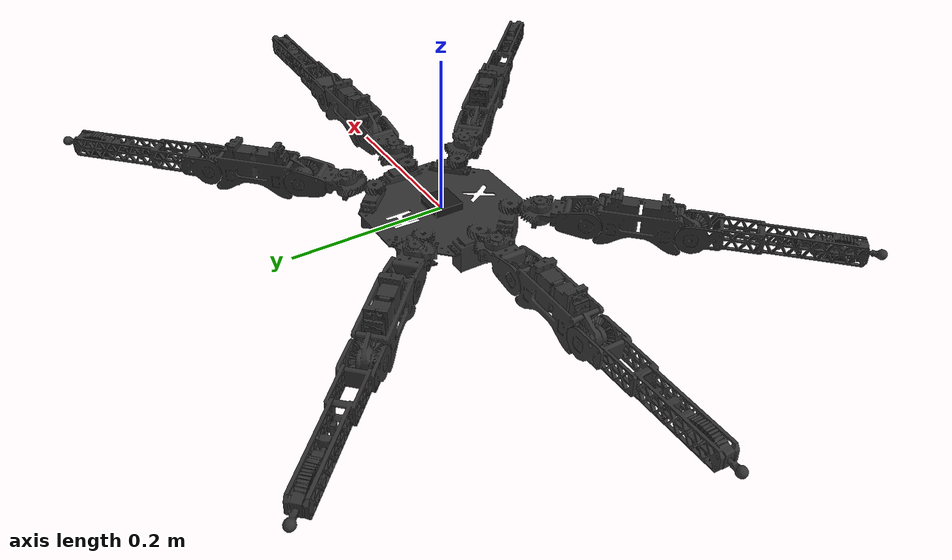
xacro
<?xml version="1.0"?>
<robot name="hexapod" xmlns:xacro="http://ros.org/wiki/xacro">
    <xacro:arg name="prefix" default="" />
    <xacro:arg name="use_gazebo" default="false" />
    <xacro:arg name="use_fake_hardware" default="false" />
    <xacro:arg name="fake_sensor_commands" default="false" />
    <xacro:arg name="port_name" default="/dev/ttyUSB0" />
    <xacro:arg name="baud_rate" default="115200" />
    <xacro:arg name="version" default="2" />

    <xacro:include filename="$(find hexapod_description)/urdf/hexapod_ee.urdf.xacro" />
    <xacro:hexapod_ee
        use_sim="true"
        prefix="$(arg prefix)"
        use_gazebo="$(arg use_gazebo)"
        use_fake_hardware="$(arg use_fake_hardware)"
        fake_sensor_commands="$(arg fake_sensor_commands)"
        port_name="$(arg port_name)"
        baud_rate="$(arg baud_rate)"
        version="$(arg version)" />
</robot>

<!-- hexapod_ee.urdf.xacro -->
<robot name="hexapod" xmlns:xacro="http://ros.org/wiki/xacro">
  <xacro:macro name="hexapod_ee" params="use_sim prefix use_gazebo use_fake_hardware fake_sensor_commands port_name baud_rate version">

    <xacro:include filename="$(find hexapod_description)/gazebo/hexapod.gazebo.xacro" />
    <xacro:include filename="$(find hexapod_description)/urdf/hexapod_leg_ee.urdf.xacro" />
    <xacro:include filename="$(find hexapod_description)/urdf/hexapod_gazebo.urdf.xacro" />
    <xacro:include filename="$(find hexapod_description)/urdf/imu.urdf.xacro"/>
    <xacro:include filename="$(find hexapod_moveit_config)/config/hexapod.ros2_control.xacro" />

    <xacro:hexapod_leg_ee prefix="${prefix}" version="${version}"/>
    <xacro:hexapod_gazebo prefix="${prefix}" />

    <xacro:imu_sensor
    prefix="${prefix}"
    parent="${prefix}base_link"
    frame_id="imu"
    xyz_offset="0 0 0.006"
    rpy_offset="0 0 0"
    update_rate="15.0"
    topic_name="imu/data"/>

    <gazebo>
      <plugin filename="gz_ros2_control-system" name="gz_ros2_control::GazeboSimROS2ControlPlugin">
        <parameters>$(find hex_gz)/config/gazebo_controller_manager.yaml</parameters>
      </plugin>
    </gazebo>

    <gazebo reference="imu">
      <sensor name="imu_sensor" type="imu">
        <update_rate>100.0</update_rate>
        <always_on>true</always_on>
        <visualize>true</visualize>
        <topic>imu/data</topic>
        <imu>
          <topic>imu/data</topic>
          <gaussian_noise>0.01</gaussian_noise>
          <bias_mean>0.0</bias_mean>
          <bias_stddev>0.0</bias_stddev>
        </imu>
      </sensor>
    </gazebo>

    <xacro:hexapod_ros2_control
        name="hexapod"
        initial_positions_file="$(find hexapod_description)/config/initial_positions.yaml"
        use_gazebo="${use_gazebo}"
        use_fake_hardware="${use_fake_hardware}"
        fake_sensor_commands="${fake_sensor_commands}"
        port_name="${port_name}"
        baud_rate="${baud_rate}" />
  </xacro:macro>
</robot>

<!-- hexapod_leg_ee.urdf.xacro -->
<robot xmlns:xacro="http://www.ros.org/wiki/xacro">
  <xacro:macro name="hexapod_leg_ee" params="prefix version">
    <xacro:if value="${int(version) == 1}">
      <!-- CECHY INERCJI -->
      <xacro:property name="platform_mass" value="0.3" />
      <xacro:property name="up_section_mass" value="0.1" />
      <xacro:property name="mid_section_mass" value="0.1" />
      <xacro:property name="down_section_mass" value="0.1" />
      <xacro:property name="ixx" value="0.001"/>
      <xacro:property name="iyy" value="0.001"/>
      <xacro:property name="izz" value="0.001"/>

      <!-- OGRANICZENIA KĄTOWE JOINTÓW -->
      <xacro:property name="joint1_lower" value="-0.5236"/>
      <xacro:property name="joint1_upper" value="0.5236"/>
      <xacro:property name="joint2_lower" value="-0.261799388"/>
      <xacro:property name="joint2_upper" value="1.308996939"/>
      <xacro:property name="joint3_lower" value="0"/>
      <xacro:property name="joint3_upper" value="1.570796327"/>

      <!-- CECHY POŁOŻENIA STAWÓW LEG 1 -->
      <xacro:property name="joint1_1_xyz" value="-0.063746 0.067285 0.003274"/>
      <xacro:property name="joint1_1_axis" value="0 0 1"/>

      <xacro:property name="joint2_1_xyz" value="-0.018864 0.024671 -0.020002"/>
      <xacro:property name="joint2_1_axis" value="-0.7968540982 -0.6041717854 0"/>

      <xacro:property name="joint3_1_xyz" value="-0.054636 0.071451 0.00505"/>
      <xacro:property name="joint3_1_axis" value="-0.7968540982 -0.6041717854 0"/>

      <xacro:property name="joint4_1_xyz" value="-0.099587 0.130461 -0.000046"/>
      <xacro:property name="joint4_1_axis" value="0 0 0"/>

      <!-- CECHY POŁOŻENIA LINKÓW LEG 1 -->
      <xacro:property name="link2_1_xyz" value="-0.013611 0.016988 -0.000419"/>
      <xacro:property name="link2_1_rpy" value="0 0 0.654498469"/>
      <xacro:property name="link3_1_xyz" value="-0.024936 0.032658 0.000547"/>
      <xacro:property name="link3_1_rpy" value="0 0 0.654498469"/>
      <xacro:property name="link4_1_xyz" value="-0.039176 0.05167 0"/>
      <xacro:property name="link4_1_rpy" value="0 0 0.654498469"/>

      <!-- CECHY POŁOŻENIA STAWÓW LEG 2 -->
      <xacro:property name="joint1_2_xyz" value="-0.005442 0.097816 0.003274"/>
      <xacro:property name="joint1_2_axis" value="0 0 1"/>

      <xacro:property name="joint2_2_xyz" value="0.0 0.031057 -0.020002"/>
      <xacro:property name="joint2_2_axis" value="-1 0 0"/>

      <xacro:property name="joint3_2_xyz" value="0.0 0.089946 0.00505"/>
      <xacro:property name="joint3_2_axis" value="-1 0 0"/>

      <xacro:property name="joint4_2_xyz" value="0.000147 0.164223 -0.000046"/>
      <xacro:property name="joint4_2_axis" value="0 0 0"/>

      <!-- CECHY POŁOŻENIA LINKÓW LEG 2 -->
      <xacro:property name="link2_2_xyz" value="-0.000493 0.021762 -0.000419"/>
      <xacro:property name="link2_2_rpy" value="0 0 0"/>
      <xacro:property name="link3_2_xyz" value="0.0 0.041 0.000546"/>
      <xacro:property name="link3_2_rpy" value="0 0 0"/>
      <xacro:property name="link4_2_xyz" value="0.000265 0.064842 0.0"/>
      <xacro:property name="link4_2_rpy" value="0 0 0"/>

      <!-- CECHY POŁOŻENIA STAWÓW LEG 3 -->
      <xacro:property name="joint1_3_xyz" value="0.055103 0.073938 0.003274"/>
      <xacro:property name="joint1_3_axis" value="0 0 1"/>

      <xacro:property name="joint2_3_xyz" value="0.018864 0.024671 -0.020002"/>
      <xacro:property name="joint2_3_axis" value="-0.794374 0.6074290528 0"/>

      <xacro:property name="joint3_3_xyz" value="0.054636 0.071451 0.00505"/>
      <xacro:property name="joint3_3_axis" value="-0.794374 0.6074290528 0"/>

      <xacro:property name="joint4_3_xyz" value="0.099252 0.130694 -0.000046"/>
      <xacro:property name="joint4_3_axis" value="0 0 0"/>

      <!-- CECHY POŁOŻENIA LINKÓW LEG 3 -->
      <xacro:property name="link2_3_xyz" value="0.012827 0.017587 -0.000419"/>
      <xacro:property name="link2_3_rpy" value="0 0 -0.654498469"/>
      <xacro:property name="link3_3_xyz" value="0.024936 0.032658 0.000547"/>
      <xacro:property name="link3_3_rpy" value="0 0 -0.654498469"/>
      <xacro:property name="link4_3_xyz" value="0.039176 0.05167 0"/>
      <xacro:property name="link4_3_rpy" value="0 0 -0.654498469"/>

      <!-- CECHY POŁOŻENIA STAWÓW LEG 4 -->
      <xacro:property name="joint1_4_xyz" value="0.055103 -0.073938 0.003274"/>
      <xacro:property name="joint1_4_axis" value="0 0 1"/>

      <xacro:property name="joint2_4_xyz" value="0.018864 -0.024671 -0.020002"/>
      <xacro:property name="joint2_4_axis" value="0.6074290528 0.794374 0"/>

      <xacro:property name="joint3_4_xyz" value="0.054636 -0.071451 0.00505"/>
      <xacro:property name="joint3_4_axis" value="0.794374 0.6074290528 0"/>

      <xacro:property name="joint4_4_xyz" value="0.099758 -0.130448 -0.000046"/>
      <xacro:property name="joint4_4_axis" value="0 0 0"/>

      <!-- CECHY POŁOŻENIA LINKÓW LEG 4 -->
      <xacro:property name="link2_4_xyz" value="0.013611 -0.016988 -0.000419"/>
      <xacro:property name="link2_4_rpy" value="0 0 3.796091123"/>
      <xacro:property name="link3_4_xyz" value="0.024936 -0.032658 0.000547"/>
      <xacro:property name="link3_4_rpy" value="0 0 3.796091123"/>
      <xacro:property name="link4_4_xyz" value="0.039176 -0.05167 0"/>
      <xacro:property name="link4_4_rpy" value="0 0 3.796091123"/>

      <!-- CECHY POŁOŻENIA STAWÓW LEG 5 -->
      <xacro:property name="joint1_5_xyz" value="-0.005442 -0.097816 0.003274"/>
      <xacro:property name="joint1_5_axis" value="0 0 1"/>

      <xacro:property name="joint2_5_xyz" value="0.0 -0.031057 -0.020002"/>
      <xacro:property name="joint2_5_axis" value="1 0 0"/>

      <xacro:property name="joint3_5_xyz" value="0.0 -0.089946 0.00505"/>
      <xacro:property name="joint3_5_axis" value="1 0 0"/>

      <xacro:property name="joint4_5_xyz" value="-0.000051 -0.164207 -0.000046"/>
      <xacro:property name="joint4_5_axis" value="0 0 0"/>

      <!-- CECHY POŁOŻENIA LINKÓW LEG 5 -->
      <xacro:property name="link2_5_xyz" value="0.000493 -0.021762 -0.000419"/>
      <xacro:property name="link2_5_rpy" value="0 0 3.141592654"/>
      <xacro:property name="link3_5_xyz" value="0.0 -0.041 0.000546"/>
      <xacro:property name="link3_5_rpy" value="0 0 3.141592654"/>
      <xacro:property name="link4_5_xyz" value="-0.000265 -0.064842 0.0"/>
      <xacro:property name="link4_5_rpy" value="0 0 3.141592654"/>

      <!-- CECHY POŁOŻENIA STAWÓW LEG 6 -->
      <xacro:property name="joint1_6_xyz" value="-0.063746 -0.067285 0.003274"/>
      <xacro:property name="joint1_6_axis" value="0 0 1"/>

      <xacro:property name="joint2_6_xyz" value="-0.018864 -0.024671 -0.020002"/>
      <xacro:property name="joint2_6_axis" value="0.794374 -0.6074290528 0"/>

      <xacro:property name="joint3_6_xyz" value="-0.054636 -0.071451 0.00505"/>
      <xacro:property name="joint3_6_axis" value="0.794374 -0.6074290528 0"/>

      <xacro:property name="joint4_6_xyz" value="-0.099223 -0.130739 -0.000046"/>
      <xacro:property name="joint4_6_axis" value="0 0 0"/>

      <!-- CECHY POŁOŻENIA LINKÓW LEG 6 -->
      <xacro:property name="link2_6_xyz" value="-0.012827 -0.017588 -0.000419"/>
      <xacro:property name="link2_6_rpy" value="0 0 2.487094184"/>
      <xacro:property name="link3_6_xyz" value="-0.024936 -0.032658 0.000547"/>
      <xacro:property name="link3_6_rpy" value="0 0 2.487094184"/>
      <xacro:property name="link4_6_xyz" value="-0.039176 -0.05167 0"/>
      <xacro:property name="link4_6_rpy" value="0 0 2.487094184"/>

    </xacro:if>

    <!-- DLA NOWEJ WERSJI HEXAPODA ZMIENIĆ PONIŻSZE PARAMETRY -->
    <xacro:if value="${int(version) == 2}">
      <!-- CECHY INERCJI -->
      <xacro:property name="platform_mass" value="0.4" />
      <xacro:property name="up_section_mass" value="0.12" />
      <xacro:property name="mid_section_mass" value="0.12" />
      <xacro:property name="down_section_mass" value="0.12" />
      <xacro:property name="ixx" value="0.002"/>
      <xacro:property name="iyy" value="0.002"/>
      <xacro:property name="izz" value="0.002"/>

      <!-- OGRANICZENIA KĄTOWE JOINTÓW -->
      <xacro:property name="joint1_lower" value="-0.785398163"/>
      <xacro:property name="joint1_upper" value="0.785398163"/>
      <xacro:property name="joint2_lower" value="-1.047197551"/>
      <xacro:property name="joint2_upper" value="1.047197551"/>
      <xacro:property name="joint3_lower" value="-0.523598776"/>
      <xacro:property name="joint3_upper" value="1.570796327"/>

      <!-- CECHY POŁOŻENIA STAWÓW LEG 1 -->
      <xacro:property name="joint1_1_xyz" value="0.086185	0.0860902	0.0170504"/>
      <xacro:property name="joint1_1_axis" value="0	0	1"/>

      <xacro:property name="joint2_1_xyz" value="0.041059	0.0410588	0.0002496"/>
      <xacro:property name="joint2_1_axis" value="-0.707106781	0.707106781	0"/>

      <xacro:property name="joint3_1_xyz" value="0.085418	0.085419	0"/>
      <xacro:property name="joint3_1_axis" value="-0.707106781	0.707106781	0"/>

      <xacro:property name="joint4_1_xyz" value="0.147786	0.147786	0.0048551"/>
      <xacro:property name="joint4_1_axis" value="0	0	0"/>

      <!-- CECHY POŁOŻENIA LINKÓW LEG 1 -->
      <xacro:property name="link2_1_xyz" value="0.003017	0.0026184	-0.0000519"/>
      <xacro:property name="link2_1_rpy" value="0	0	0.7853981634"/>
      <xacro:property name="link3_1_xyz" value="0.039867	0.039421	0.00014"/>
      <xacro:property name="link3_1_rpy" value="0	0	0.7853981634"/>
      <xacro:property name="link4_1_xyz" value="0.082477	0.082555	0.0045585"/>
      <xacro:property name="link4_1_rpy" value="0	0	0.7853981634"/>
      <xacro:property name="link5_1_xyz" value="0	0	0"/>
      <xacro:property name="link_tip_1_rpy" value="0 0 0.785398163"/>

      <!-- CECHY POŁOŻENIA STAWÓW LEG 2 -->
      <xacro:property name="joint1_2_xyz" value="0.121845	0	0.0170504"/>
      <xacro:property name="joint1_2_axis" value="0	0	1"/>

      <xacro:property name="joint2_2_xyz" value="0.058105	-0.000094711	0.0002496"/>
      <xacro:property name="joint2_2_axis" value="0	1	0"/>

      <xacro:property name="joint3_2_xyz" value="0.120802	0.000000002	0"/>
      <xacro:property name="joint3_2_axis" value="0	1	0"/>

      <xacro:property name="joint4_2_xyz" value="0.209002	-0.000000003	0.0048551"/>
      <xacro:property name="joint4_2_axis" value="0	0	0"/>

      <!-- CECHY POŁOŻENIA LINKÓW LEG 2 -->
      <xacro:property name="link2_2_xyz" value="0.003944	-0.000340488	-0.0000519"/>
      <xacro:property name="link2_2_rpy" value="0	0	0"/>
      <xacro:property name="link3_2_xyz" value="0.055988	-0.000035124	0.0001789"/>
      <xacro:property name="link3_2_rpy" value="0	0	0"/>
      <xacro:property name="link4_2_xyz" value="0.116837	0.000195559	0.0045585"/>
      <xacro:property name="link4_2_rpy" value="0	0	0"/>
      <xacro:property name="link5_2_xyz" value="0	0	0"/>
      <xacro:property name="link5_2_rpy" value="0	0	0"/>
      <xacro:property name="link_tip_2_rpy" value="0 0 0"/>

      <!-- CECHY POŁOŻENIA STAWÓW LEG 3 -->
      <xacro:property name="joint1_3_xyz" value="0.0861847	-0.0860902	0.0170504"/>
      <xacro:property name="joint1_3_axis" value="0	0	1"/>

      <xacro:property name="joint2_3_xyz" value="0.0410583	-0.0412488	0.0002496"/>
      <xacro:property name="joint2_3_axis" value="0.707106781	0.707106781	0"/>

      <xacro:property name="joint3_3_xyz" value="0.08542	-0.085418	0"/>
      <xacro:property name="joint3_3_axis" value="0.707106781	0.707106781	0"/>

      <xacro:property name="joint4_3_xyz" value="0.147785	-0.147785	0.0048551"/>
      <xacro:property name="joint4_3_axis" value="0	0	0"/>

      <!-- CECHY POŁOŻENIA LINKÓW LEG 3 -->
      <xacro:property name="link2_3_xyz" value="0.0029399	-0.002591	-0.0000519"/>
      <xacro:property name="link2_3_rpy" value="0	0	5.497787144"/>
      <xacro:property name="link3_3_xyz" value="0.03928	-0.039511	0.00014"/>
      <xacro:property name="link3_3_rpy" value="0	0	5.497787144"/>
      <xacro:property name="link4_3_xyz" value="0.082476	-0.082624	0.0045585"/>
      <xacro:property name="link4_3_rpy" value="0	0	5.497787144"/>
      <xacro:property name="link5_3_xyz" value="0	0	0"/>
      <xacro:property name="link5_3_rpy" value="0	0	0"/>
      <xacro:property name="link_tip_3_rpy" value="0 0 5.497787144"/>

      <!-- CECHY POŁOŻENIA STAWÓW LEG 4 -->
      <xacro:property name="joint1_4_xyz" value="-0.0861847	-0.0860902	0.0170504"/>
      <xacro:property name="joint1_4_axis" value="0	0	1"/>

      <xacro:property name="joint2_4_xyz" value="-0.0410583	-0.0412488	0.0002496"/>
      <xacro:property name="joint2_4_axis" value="0.707106781	-0.707106781	0"/>

      <xacro:property name="joint3_4_xyz" value="-0.08542	-0.085418	0"/>
      <xacro:property name="joint3_4_axis" value="0.707106781	-0.707106781	0"/>

      <xacro:property name="joint4_4_xyz" value="-0.147785	-0.147785	0.0048551"/>
      <xacro:property name="joint4_4_axis" value="0	0	0"/>

      <!-- CECHY POŁOŻENIA LINKÓW LEG 4 -->
      <xacro:property name="link2_4_xyz" value="-0.0029399	-0.002591	-0.0000519"/>
      <xacro:property name="link2_4_rpy" value="0	0	3.926990817"/>
      <xacro:property name="link3_4_xyz" value="-0.03928	-0.039511	0.00014"/>
      <xacro:property name="link3_4_rpy" value="0	0	3.926990817"/>
      <xacro:property name="link4_4_xyz" value="-0.082476	-0.082624	0.0045585"/>
      <xacro:property name="link4_4_rpy" value="0	0	3.926990817"/>
      <xacro:property name="link5_4_xyz" value="0	0	0"/>
      <xacro:property name="link5_4_rpy" value="0	0	0"/>
      <xacro:property name="link_tip_4_rpy" value="0 0 3.926990817"/>

      <!-- CECHY POŁOŻENIA STAWÓW LEG 5 -->
      <xacro:property name="joint1_5_xyz" value="-0.121845	0	0.0170504"/>
      <xacro:property name="joint1_5_axis" value="0	0	1"/>

      <xacro:property name="joint2_5_xyz" value="-0.058105	-0.000094711	0.0002496"/>
      <xacro:property name="joint2_5_axis" value="0	-1	0"/>

      <xacro:property name="joint3_5_xyz" value="-0.120802	0.000000002	0"/>
      <xacro:property name="joint3_5_axis" value="0	-1	0"/>

      <xacro:property name="joint4_5_xyz" value="-0.209002	-0.000000003	0.0048551"/>
      <xacro:property name="joint4_5_axis" value="0	0	0"/>

      <!-- CECHY POŁOŻENIA LINKÓW LEG 5 -->
      <xacro:property name="link2_5_xyz" value="-0.003953	-0.000340488	-0.0000519"/>
      <xacro:property name="link2_5_rpy" value="0	0	3.141592654"/>
      <xacro:property name="link3_5_xyz" value="-0.055988	-0.000035124	0.0001789"/>
      <xacro:property name="link3_5_rpy" value="0	0	3.141592654"/>
      <xacro:property name="link4_5_xyz" value="-0.116837	0.000195559	0.0045585"/>
      <xacro:property name="link4_5_rpy" value="0	0	3.141592654"/>
      <xacro:property name="link5_5_xyz" value="0	0	0"/>
      <xacro:property name="link5_5_rpy" value="0	0	0"/>
      <xacro:property name="link_tip_5_rpy" value="0 0 3.141592654"/>

      <!-- CECHY POŁOŻENIA STAWÓW LEG 6 -->
      <xacro:property name="joint1_6_xyz" value="-0.0859957	0.0860903	0.0170505"/>
      <xacro:property name="joint1_6_axis" value="0	0	1"/>

      <xacro:property name="joint2_6_xyz" value="-0.0412483	0.0410587	0.0002494"/>
      <xacro:property name="joint2_6_axis" value="-0.707106781	-0.707106781	0"/>

      <xacro:property name="joint3_6_xyz" value="-0.08542	0.085419	0.0000001"/>
      <xacro:property name="joint3_6_axis" value="-0.707106781	-0.707106781	0"/>

      <xacro:property name="joint4_6_xyz" value="-0.147786	0.147785	0.0048551"/>
      <xacro:property name="joint4_6_axis" value="0	0	0"/>

      <!-- CECHY POŁOŻENIA LINKÓW LEG 6 -->
      <xacro:property name="link2_6_xyz" value="-0.0029399	0.002591	-0.0000519"/>
      <xacro:property name="link2_6_rpy" value="0	0	2.35619449"/>
      <xacro:property name="link3_6_xyz" value="-0.03928	0.039511	0.00014"/>
      <xacro:property name="link3_6_rpy" value="0	0	2.364921136"/>
      <xacro:property name="link4_6_xyz" value="-0.082476	0.082624	0.0045585"/>
      <xacro:property name="link4_6_rpy" value="0	0	2.35619449"/>
      <xacro:property name="link5_6_xyz" value="0	0	0"/>
      <xacro:property name="link5_6_rpy" value="0	0	0"/>
      <xacro:property name="link_tip_6_rpy" value="0 0 2.35619449"/>

    </xacro:if>

    <xacro:property
        name="meshes_file_direction"
        value="package://hexapod_description/meshes/Version${version}"/>

    <!-- Include macro modeli kolizyjnych z prostych kształtów geometrycznych -->
     <xacro:if value="${int(version) == 1}">
      <xacro:include filename="$(find hexapod_description)/collision/Version1/platform_hitbox.xacro"/>
      <xacro:include filename="$(find hexapod_description)/collision/Version1/up_section_hitbox.xacro"/>
      <xacro:include filename="$(find hexapod_description)/collision/Version1/mid_section_hitbox.xacro"/>
      <xacro:include filename="$(find hexapod_description)/collision/Version1/down_section_hitbox.xacro"/>
    </xacro:if>

    <!-- NA RAZIE BRAK PROSTYCH MODELI KOLIZJI -->
    <xacro:if value="${int(version) == 2}">
       <xacro:include filename="$(find hexapod_description)/collision/Version2/platform_hitbox.xacro"/>
      <xacro:include filename="$(find hexapod_description)/collision/Version2/up_section_hitbox.xacro"/>
      <xacro:include filename="$(find hexapod_description)/collision/Version2/mid_section_hitbox.xacro"/>
      <xacro:include filename="$(find hexapod_description)/collision/Version2/down_section_hitbox.xacro"/>
      <xacro:include filename="$(find hexapod_description)/collision/Version2/tip_hitbox.xacro"/>
    </xacro:if>

    <!-- Macro platformy -->
      <xacro:macro name="platform_base" params="prefix">
        <link name="${prefix}base_link">
          <visual>
            <origin xyz="0 0 0" rpy="0 0 0"/>
            <geometry>
              <mesh filename="${meshes_file_direction}/platform.stl" scale="1 1 1"/>
            </geometry>
            <material name="gray">
              <color rgba="0.2 0.2 0.2 1"/>
            </material>
          </visual>

          <!-- MODEL KOLIZYJNY -->
          <xacro:platform_collision prefix="${prefix}" />
          <inertial>
            <origin xyz="0 0 0" rpy="0 0 0"/>
            <mass value="${platform_mass}"/>
            <inertia
              ixx="${ixx}" ixy="0.0" ixz="0.0"
              iyy="${iyy}" iyz="0.0"
              izz="${izz}"/>
          </inertial>
        </link>
      </xacro:macro>

    <!-- Macro: Joint -->
    <xacro:macro name="leg_joint" params="prefix joint_name parent_link child_link xyz axis lower upper">
      <joint name="${joint_name}" type="revolute">
        <parent link="${parent_link}"/>
        <child link="${child_link}"/>
        <origin xyz="${xyz}" rpy="0 0 0"/>
        <axis xyz="${axis}"/>
        <limit effort="5.0" velocity="1.0" lower="${lower}" upper="${upper}"/>
        <dynamics damping="0.1"/>
      </joint>
    </xacro:macro>

    <!-- Macro: UP_SECTION -->
    <xacro:macro name="upper_leg" params="prefix index xyz rpy">
      <link name="${prefix}link2_${index}">
        <visual>
          <origin xyz="${xyz}" rpy="${rpy}"/>
          <geometry>
            <mesh filename="${meshes_file_direction}/leg_up.stl" scale="1.0 1.0 1.0"/>
          </geometry>
          <material name="grey">
            <color rgba="0.2 0.2 0.2 1"/>
          </material>
        </visual>

        <!-- MODEL KOLIZYJNY -->
            <xacro:upper_leg_collision prefix="${prefix}" position="${xyz}" rotation="${rpy}"/>
        <inertial>
          <origin xyz="${xyz}" rpy="0.0 0.0 0.0"/>
          <mass value="${up_section_mass}"/>
          <inertia ixx="${ixx}" ixy="0.0" ixz="0.0" iyy="${iyy}" iyz="0.0" izz="${izz}"/>
        </inertial>
      </link>
    </xacro:macro>

    <!-- Macro: MID_SECTION -->
    <xacro:macro name="mid_leg" params="prefix index xyz rpy">
      <link name="${prefix}link3_${index}">
        <visual>
          <origin xyz="${xyz}" rpy="${rpy}"/>
          <geometry>
            <mesh filename="${meshes_file_direction}/leg_mid.stl" scale="1.0 1.0 1.0"/>
          </geometry>
          <material name="grey">
            <color rgba="0.2 0.2 0.2 1"/>
          </material>
        </visual>
            <xacro:mid_leg_collision prefix="${prefix}" position="${xyz}" rotation="${rpy}"/>
        <inertial>
          <origin xyz="${xyz}" rpy="${rpy}"/>
          <mass value="${mid_section_mass}"/>
          <inertia ixx="${ixx}" ixy="0.0" ixz="0.0" iyy="${iyy}" iyz="0.0" izz="${izz}"/>
        </inertial>
      </link>
    </xacro:macro>

    <!-- Macro: DOWN_SECTION -->
    <xacro:macro name="lower_leg" params="prefix index xyz rpy">
      <link name="${prefix}link4_${index}">
        <visual>
          <origin xyz="${xyz}" rpy="${rpy}"/>
          <geometry>
            <mesh filename="${meshes_file_direction}/leg_down.stl" scale="1.0 1.0 1.0"/>
          </geometry>
          <material name="grey">
            <color rgba="0.2 0.2 0.2 1"/>
          </material>
        </visual>
            <xacro:lower_leg_collision prefix="${prefix}" position="${xyz}" rotation="${rpy}"/>
        <inertial>
          <origin xyz="${xyz}" rpy="${rpy}"/>
          <mass value="${down_section_mass}"/>
          <inertia ixx="${ixx}" ixy="0.0" ixz="0.0" iyy="${iyy}" iyz="0.0" izz="${izz}"/>
        </inertial>
      </link>
    </xacro:macro>

  <!-- Macro: Effector Joint -->
  <xacro:macro name="end_effector_joint" params="prefix index xyz rpy">
    <joint name="${prefix}joint4_${index}" type="fixed">
      <parent link="${prefix}link4_${index}"/>
      <child link="${prefix}link5_${index}"/>
      <origin xyz="${xyz}" rpy="${rpy}"/>
    </joint>
  </xacro:macro>

  <!-- Macro: Effector -->
   <xacro:if value="${int(version) == 1}">
      <xacro:macro name="end_effector_link" params="prefix index">
        <link name="${prefix}link5_${index}"/>
      </xacro:macro>
   </xacro:if>

  <xacro:if value="${int(version) == 2}">
    <xacro:macro name="end_effector_link" params="prefix index rpy">
      <link name="${prefix}link5_${index}">
        <xacro:tip_collision prefix="${prefix}" rotation="${rpy}"/>
        <inertial>
        <origin xyz="0 0 0" rpy="0 0 0"/>
        <mass value="0.05"/>  <!-- Mała masa dla end effector -->
        <inertia
          ixx="0.0001" ixy="0.0" ixz="0.0"
          iyy="0.0001" iyz="0.0"
          izz="0.0001"/>
      </inertial>
      <visual>
        <origin xyz="0 0 0" rpy="0 0 0"/>
        <geometry>
          <sphere radius="0.005"/>
        </geometry>
        <material name="grey">
          <color rgba="0.2 0.2 0.2 1"/>
        </material>
      </visual>
      </link>
    </xacro:macro>
  </xacro:if>

  <xacro:macro name="hexapod" params="prefix version">
      <!-- Platform -->
    <xacro:platform_base prefix="${prefix}" />

    <!-- LEG 1 - używa zmiennych zamiast wartości na twardo -->
    <xacro:leg_joint
      prefix="${prefix}"
      joint_name="${prefix}joint1_1"
      parent_link="${prefix}base_link"
      child_link="${prefix}link2_1"
      xyz="${joint1_1_xyz}"
      axis="${joint1_1_axis}"
      lower="${joint1_lower}"
      upper="${joint1_upper}" />
    <xacro:upper_leg prefix="${prefix}" index="1" xyz="${link2_1_xyz}" rpy="${link2_1_rpy}" />

    <xacro:leg_joint
      prefix="${prefix}"
      joint_name="${prefix}joint2_1"
      parent_link="${prefix}link2_1"
      child_link="${prefix}link3_1"
      xyz="${joint2_1_xyz}"
      axis="${joint2_1_axis}"
      lower="${joint2_lower}"
      upper="${joint2_upper}" />
    <xacro:mid_leg prefix="${prefix}" index="1" xyz="${link3_1_xyz}" rpy="${link3_1_rpy}" />

    <xacro:leg_joint
      prefix="${prefix}"
      joint_name="${prefix}joint3_1"
      parent_link="${prefix}link3_1"
      child_link="${prefix}link4_1"
      xyz="${joint3_1_xyz}"
      axis="${joint3_1_axis}"
      lower="${joint3_lower}"
      upper="${joint3_upper}" />
    <xacro:lower_leg prefix="${prefix}" index="1" xyz="${link4_1_xyz}" rpy="${link4_1_rpy}" />

    <xacro:end_effector_joint prefix="${prefix}" index="1" xyz="${joint4_1_xyz}" rpy="${joint4_1_axis}"/>
    <xacro:if value="${int(version) == 1}">
      <xacro:end_effector_link prefix="${prefix}" index="1"/>
    </xacro:if>
    <xacro:if value="${int(version) == 2}">
      <xacro:end_effector_link prefix="${prefix}" index="1" rpy="${link_tip_1_rpy}"/>
    </xacro:if>

    <!-- LEG 2 - używa zmiennych zamiast wartości na twardo -->
    <xacro:leg_joint
      prefix="${prefix}"
      joint_name="${prefix}joint1_2"
      parent_link="${prefix}base_link"
      child_link="${prefix}link2_2"
      xyz="${joint1_2_xyz}"
      axis="${joint1_2_axis}"
      lower="${joint1_lower}"
      upper="${joint1_upper}"/>
    <xacro:upper_leg prefix="${prefix}" index="2" xyz="${link2_2_xyz}" rpy="${link2_2_rpy}"/>

    <xacro:leg_joint
      prefix="${prefix}"
      joint_name="${prefix}joint2_2"
      parent_link="${prefix}link2_2"
      child_link="${prefix}link3_2"
      xyz="${joint2_2_xyz}"
      axis="${joint2_2_axis}"
      lower="${joint2_lower}"
      upper="${joint2_upper}"/>
    <xacro:mid_leg prefix="${prefix}" index="2" xyz="${link3_2_xyz}" rpy="${link3_2_rpy}"/>

    <xacro:leg_joint
      prefix="${prefix}"
      joint_name="${prefix}joint3_2"
      parent_link="${prefix}link3_2"
      child_link="${prefix}link4_2"
      xyz="${joint3_2_xyz}"
      axis="${joint3_2_axis}"
      lower="${joint3_lower}"
      upper="${joint3_upper}"/>
    <xacro:lower_leg prefix="${prefix}" index="2" xyz="${link4_2_xyz}" rpy="${link4_2_rpy}"/>

    <xacro:end_effector_joint prefix="${prefix}" index="2" xyz="${joint4_2_xyz}" rpy="${joint4_2_axis}"/>
    <xacro:if value="${int(version) == 1}">
      <xacro:end_effector_link prefix="${prefix}" index="2"/>
    </xacro:if>
    <xacro:if value="${int(version) == 2}">
      <xacro:end_effector_link prefix="${prefix}" index="2" rpy="${link_tip_2_rpy}"/>
    </xacro:if>

    <!-- LEG 3 - używa zmiennych zamiast wartości na twardo -->
    <xacro:leg_joint
      prefix="${prefix}"
      joint_name="${prefix}joint1_3"
      parent_link="${prefix}base_link"
      child_link="${prefix}link2_3"
      xyz="${joint1_3_xyz}"
      axis="${joint1_3_axis}"
      lower="${joint1_lower}"
      upper="${joint1_upper}"/>
    <xacro:upper_leg prefix="${prefix}" index="3" xyz="${link2_3_xyz}" rpy="${link2_3_rpy}"/>

    <xacro:leg_joint
      prefix="${prefix}"
      joint_name="${prefix}joint2_3"
      parent_link="${prefix}link2_3"
      child_link="${prefix}link3_3"
      xyz="${joint2_3_xyz}"
      axis="${joint2_3_axis}"
      lower="${joint2_lower}"
      upper="${joint2_upper}"/>
    <xacro:mid_leg prefix="${prefix}" index="3" xyz="${link3_3_xyz}" rpy="${link3_3_rpy}"/>

    <xacro:leg_joint
      prefix="${prefix}"
      joint_name="${prefix}joint3_3"
      parent_link="${prefix}link3_3"
      child_link="${prefix}link4_3"
      xyz="${joint3_3_xyz}"
      axis="${joint3_3_axis}"
      lower="${joint3_lower}"
      upper="${joint3_upper}"/>
    <xacro:lower_leg prefix="${prefix}" index="3" xyz="${link4_3_xyz}" rpy="${link4_3_rpy}"/>

    <xacro:end_effector_joint prefix="${prefix}" index="3" xyz="${joint4_3_xyz}" rpy="${joint4_3_axis}"/>
    <xacro:if value="${int(version) == 1}">
      <xacro:end_effector_link prefix="${prefix}" index="3"/>
    </xacro:if>
    <xacro:if value="${int(version) == 2}">
      <xacro:end_effector_link prefix="${prefix}" index="3" rpy="${link_tip_3_rpy}"/>
    </xacro:if>

    <!-- LEG 4 - używa zmiennych zamiast wartości na twardo -->
    <xacro:leg_joint
      prefix="${prefix}"
      joint_name="${prefix}joint1_4"
      parent_link="${prefix}base_link"
      child_link="${prefix}link2_4"
      xyz="${joint1_4_xyz}"
      axis="${joint1_4_axis}"
      lower="${joint1_lower}"
      upper="${joint1_upper}"/>
    <xacro:upper_leg prefix="${prefix}" index="4" xyz="${link2_4_xyz}" rpy="${link2_4_rpy}"/>

    <xacro:leg_joint
      prefix="${prefix}"
      joint_name="${prefix}joint2_4"
      parent_link="${prefix}link2_4"
      child_link="${prefix}link3_4"
      xyz="${joint2_4_xyz}"
      axis="${joint2_4_axis}"
      lower="${joint2_lower}"
      upper="${joint2_upper}"/>
    <xacro:mid_leg prefix="${prefix}" index="4" xyz="${link3_4_xyz}" rpy="${link3_4_rpy}"/>

    <xacro:leg_joint
      prefix="${prefix}"
      joint_name="${prefix}joint3_4"
      parent_link="${prefix}link3_4"
      child_link="${prefix}link4_4"
      xyz="${joint3_4_xyz}"
      axis="${joint3_4_axis}"
      lower="${joint3_lower}"
      upper="${joint3_upper}"/>
    <xacro:lower_leg prefix="${prefix}" index="4" xyz="${link4_4_xyz}" rpy="${link4_4_rpy}"/>

    <xacro:end_effector_joint prefix="${prefix}" index="4" xyz="${joint4_4_xyz}" rpy="${joint4_4_axis}"/>
    <xacro:if value="${int(version) == 1}">
      <xacro:end_effector_link prefix="${prefix}" index="4"/>
    </xacro:if>
    <xacro:if value="${int(version) == 2}">
      <xacro:end_effector_link prefix="${prefix}" index="4" rpy="${link_tip_4_rpy}"/>
    </xacro:if>

    <!-- LEG 5 - używa zmiennych zamiast wartości na twardo -->
    <xacro:leg_joint
      prefix="${prefix}"
      joint_name="${prefix}joint1_5"
      parent_link="${prefix}base_link"
      child_link="${prefix}link2_5"
      xyz="${joint1_5_xyz}"
      axis="${joint1_5_axis}"
      lower="${joint1_lower}"
      upper="${joint1_upper}"/>
    <xacro:upper_leg prefix="${prefix}" index="5" xyz="${link2_5_xyz}" rpy="${link2_5_rpy}"/>

    <xacro:leg_joint
      prefix="${prefix}"
      joint_name="${prefix}joint2_5"
      parent_link="${prefix}link2_5"
      child_link="${prefix}link3_5"
      xyz="${joint2_5_xyz}"
      axis="${joint2_5_axis}"
      lower="${joint2_lower}"
      upper="${joint2_upper}"/>
    <xacro:mid_leg prefix="${prefix}" index="5" xyz="${link3_5_xyz}" rpy="${link3_5_rpy}"/>

    <xacro:leg_joint
      prefix="${prefix}"
      joint_name="${prefix}joint3_5"
      parent_link="${prefix}link3_5"
      child_link="${prefix}link4_5"
      xyz="${joint3_5_xyz}"
      axis="${joint3_5_axis}"
      lower="${joint3_lower}"
      upper="${joint3_upper}"/>
    <xacro:lower_leg prefix="${prefix}" index="5" xyz="${link4_5_xyz}" rpy="${link4_5_rpy}"/>

    <xacro:end_effector_joint prefix="${prefix}" index="5" xyz="${joint4_5_xyz}" rpy="${joint4_5_axis}"/>
    <xacro:if value="${int(version) == 1}">
      <xacro:end_effector_link prefix="${prefix}" index="5"/>
    </xacro:if>
    <xacro:if value="${int(version) == 2}">
      <xacro:end_effector_link prefix="${prefix}" index="5" rpy="${link_tip_5_rpy}"/>
    </xacro:if>

    <!-- LEG 6 - używa zmiennych zamiast wartości na twardo -->
    <xacro:leg_joint
      prefix="${prefix}"
      joint_name="${prefix}joint1_6"
      parent_link="${prefix}base_link"
      child_link="${prefix}link2_6"
      xyz="${joint1_6_xyz}"
      axis="${joint1_6_axis}"
      lower="${joint1_lower}"
      upper="${joint1_upper}"/>
    <xacro:upper_leg prefix="${prefix}" index="6" xyz="${link2_6_xyz}" rpy="${link2_6_rpy}"/>

    <xacro:leg_joint
      prefix="${prefix}"
      joint_name="${prefix}joint2_6"
      parent_link="${prefix}link2_6"
      child_link="${prefix}link3_6"
      xyz="${joint2_6_xyz}"
      axis="${joint2_6_axis}"
      lower="${joint2_lower}"
      upper="${joint2_upper}"/>
    <xacro:mid_leg prefix="${prefix}" index="6" xyz="${link3_6_xyz}" rpy="${link3_6_rpy}"/>

    <xacro:leg_joint
      prefix="${prefix}"
      joint_name="${prefix}joint3_6"
      parent_link="${prefix}link3_6"
      child_link="${prefix}link4_6"
      xyz="${joint3_6_xyz}"
      axis="${joint3_6_axis}"
      lower="${joint3_lower}"
      upper="${joint3_upper}"/>
    <xacro:lower_leg prefix="${prefix}" index="6" xyz="${link4_6_xyz}" rpy="${link4_6_rpy}"/>

    <xacro:end_effector_joint prefix="${prefix}" index="6" xyz="${joint4_6_xyz}" rpy="${joint4_6_axis}"/>
    <xacro:if value="${int(version) == 1}">
      <xacro:end_effector_link prefix="${prefix}" index="6"/>
    </xacro:if>
    <xacro:if value="${int(version) == 2}">
      <xacro:end_effector_link prefix="${prefix}" index="6" rpy="${link_tip_6_rpy}"/>
    </xacro:if>

  </xacro:macro>

  <!-- Macro wywołujące hexapoda -->
  <xacro:hexapod prefix="${prefix}" version="${version}"/>

</xacro:macro>

</robot>

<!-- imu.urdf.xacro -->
<robot xmlns:xacro="http://www.ros.org/wiki/xacro">
    <xacro:property name="M_PI" value="3.1415926535897931" />
    <xacro:arg name="prefix" default=""/>
    <!-- imu jest ale nie wysyla nic -> do naprawy :( -->

    <xacro:macro name="imu_sensor" params="
        prefix:=''
        parent:='$(arg prefix)base_link'
        frame_id:='imu'
        xyz_offset:='0 0 0'
        rpy_offset:='0 0 0'
        inertial_xyz_offset:='0 0 0'
        inertial_rpy_offset:='0 0 0'
        mass:=0.031
        length:=0.03899
        width:=0.03785
        height:=0.01338
        material_name:='imu_black'
        material_color:='0.1 0.1 0.1 1'
        gazebo_material_ambient:='0.1 0.1 0.1 1'
        gazebo_material_diffuse:='0.1 0.1 0.1 1'
        gazebo_material_specular:='0.1 0.1 0.1 1'
        update_rate:='15.0'
        topic_name:='imu/data'
        always_on:=true
        visualize:=false">

        <xacro:property name="ixx" value="${(mass/12.0) * (height*height + width*width)}" />
        <xacro:property name="iyy" value="${(mass/12.0) * (length*length + height*height)}" />
        <xacro:property name="izz" value="${(mass/12.0) * (length*length + width*width)}" />

        <link name="${prefix}${frame_id}_link">
            <visual>
                <origin xyz="0 0 0" rpy="0 0 0"/>
                <geometry>
                    <box size="${length} ${width} ${height}"/>
                </geometry>
                <material name="${material_name}">
                    <color rgba="${material_color}"/>
                </material>
            </visual>

            <inertial>
                <mass value="${mass}" />
                <origin xyz="${inertial_xyz_offset}" rpy="${inertial_rpy_offset}"/>
                <inertia
                    ixx="${ixx}"
                    ixy="0.0"
                    ixz="0.0"
                    iyy="${iyy}"
                    iyz="0.0"
                    izz="${izz}" />
            </inertial>
        </link>

        <joint name="${prefix}${frame_id}_joint" type="fixed">
            <parent link="${prefix}${parent}"/>
            <child link="${prefix}${frame_id}_link" />
            <origin xyz="${xyz_offset}" rpy="${rpy_offset}"/>
        </joint>

        <gazebo reference="${prefix}${frame_id}_link">
            <material>
                <ambient>${gazebo_material_ambient}</ambient>
                <diffuse>${gazebo_material_diffuse}</diffuse>
                <specular>${gazebo_material_specular}</specular>
            </material>
            <sensor name="${prefix}imu_sensor" type="imu">
                <topic>${topic_name}</topic>
                <update_rate>${update_rate}</update_rate>
                <always_on>${always_on}</always_on>
                <visualize>${visualize}</visualize>
                <gz_frame_id>${prefix}${frame_id}_link</gz_frame_id>
            </sensor>
        </gazebo>
    </xacro:macro>
</robot>

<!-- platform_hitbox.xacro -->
<robot xmlns:xacro="http://www.ros.org/wiki/xacro">
    <!-- Macro modelu kolizji platformy V2 złożonego z sześcianów i cylindrów -->
<xacro:macro name="platform_collision" params="prefix">
    <!-- Sześcian 0 -->
    <collision>
      <origin xyz="0 0 0.00210" rpy="0 0 0"/>
      <geometry>
        <box size="0.19000 0.07820 0.00320"/>
      </geometry>
    </collision>

    <!-- Sześcian 1 -->
    <collision>
      <origin xyz="0.04104 0.04082 0.00210" rpy="0 0 0.78540"/>
      <geometry>
        <box size="0.07320 0.08000 0.00320"/>
      </geometry>
    </collision>

    <!-- Sześcian 2 -->
    <collision>
      <origin xyz="0.04104 -0.04082 0.00210" rpy="0 0 -0.78540"/>
      <geometry>
        <box size="0.07320 0.08000 0.00320"/>
      </geometry>
    </collision>

    <!-- Sześcian 3 -->
    <collision>
      <origin xyz="-0.04104 0.04082 0.00210" rpy="0 0 -0.78540"/>
      <geometry>
        <box size="0.07320 0.08000 0.00320"/>
      </geometry>
    </collision>

    <!-- Sześcian 4 -->
    <collision>
      <origin xyz="-0.04104 -0.04082 0.00210" rpy="0 0 0.78540"/>
      <geometry>
        <box size="0.07320 0.08000 0.00320"/>
      </geometry>
    </collision>

    <!-- Sześcian 5 -->
    <collision>
      <origin xyz="0 0 0.00210" rpy="0 0 0"/>
      <geometry>
        <box size="0.07820 0.19000 0.00320"/>
      </geometry>
    </collision>

    <!-- Sześcian 6 -->
    <collision>
      <origin xyz="-0.08452 0.00975 -0.00693" rpy="0 0 1.57080"/>
      <geometry>
        <box size="0.04060 0.02100 0.03880"/>
      </geometry>
    </collision>

    <!-- Sześcian 7 -->
    <collision>
      <origin xyz="-0.05269 0.06718 -0.00693" rpy="0 0 0.78540"/>
      <geometry>
        <box size="0.04060 0.02100 0.03880"/>
      </geometry>
    </collision>

    <!-- Sześcian 8 -->
    <collision>
      <origin xyz="0.05269 0.06718 -0.00693" rpy="0 0 -0.78540"/>
      <geometry>
        <box size="0.04060 0.02100 0.03880"/>
      </geometry>
    </collision>

    <!-- Sześcian 9 -->
    <collision>
      <origin xyz="-0.06759 -0.05244 -0.00693" rpy="0 0 -0.78540"/>
      <geometry>
        <box size="0.04060 0.02100 0.03880"/>
      </geometry>
    </collision>

    <!-- Sześcian 10 -->
    <collision>
      <origin xyz="0.06759 -0.05244 -0.00693" rpy="0 0 0.78540"/>
      <geometry>
        <box size="0.04060 0.02100 0.03880"/>
      </geometry>
    </collision>

    <!-- Sześcian 11 -->
    <collision>
      <origin xyz="0.08452 0.00975 -0.00693" rpy="0 0 1.57080"/>
      <geometry>
        <box size="0.04060 0.02100 0.03880"/>
      </geometry>
    </collision>

    <!-- Cylinder 0 -->
    <collision>
      <origin xyz="0.08573 0 0.01696" rpy="0 0 0"/>
      <geometry>
        <cylinder radius="0.014" length="0.00840"/>
      </geometry>
    </collision>

    <!-- Cylinder 1 -->
    <collision>
      <origin xyz="-0.08573 0 0.01696" rpy="0 0 0"/>
      <geometry>
        <cylinder radius="0.014" length="0.00840"/>
      </geometry>
    </collision>

    <!-- Cylinder 2 -->
    <collision>
      <origin xyz="-0.06054 -0.06009 0.01696" rpy="0 0 0"/>
      <geometry>
        <cylinder radius="0.014" length="0.00840"/>
      </geometry>
    </collision>

    <!-- Cylinder 3 -->
    <collision>
      <origin xyz="-0.06054 0.06009 0.01696" rpy="0 0 0"/>
      <geometry>
        <cylinder radius="0.014" length="0.00840"/>
      </geometry>
    </collision>

    <!-- Cylinder 4 -->
    <collision>
      <origin xyz="0.06054 -0.06009 0.01696" rpy="0 0 0"/>
      <geometry>
        <cylinder radius="0.014" length="0.00840"/>
      </geometry>
    </collision>

    <!-- Cylinder 5 -->
    <collision>
      <origin xyz="0.06054 0.06009 0.01696" rpy="0 0 0"/>
      <geometry>
        <cylinder radius="0.014" length="0.00840"/>
      </geometry>
    </collision>

  </xacro:macro>
</robot>

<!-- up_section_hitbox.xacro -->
<robot xmlns:xacro="http://www.ros.org/wiki/xacro">
    <!-- Macro for upper leg collision model composed of simple geometric shapes -->
    <xacro:macro name="upper_leg_collision" params="prefix position rotation">
        <!-- Parse position into separate x, y, z variables -->
        <xacro:property name="pos_parts" value="${position.split(' ')}"/>
        <xacro:property name="center_x" value="${pos_parts[0]}"/>
        <xacro:property name="center_y" value="${pos_parts[1]}"/>
        <xacro:property name="center_z" value="${pos_parts[2]}"/>

        <!-- Parse rotation into separate roll, pitch, yaw variables -->
        <xacro:property name="rot_parts" value="${rotation.split(' ')}"/>
        <xacro:property name="roll" value="${rot_parts[0]}"/>
        <xacro:property name="pitch" value="${rot_parts[1]}"/>
        <xacro:property name="yaw" value="${rot_parts[2]}"/>

        <!-- Define geometric shapes with their relative positions and sizes from CSV data V2 -->

        <!-- Cube 0 -->
        <xacro:property name="cube_0_size_x" value="0.022"/>
        <xacro:property name="cube_0_size_y" value="0.0316"/>
        <xacro:property name="cube_0_size_z" value="0.0282"/>
        <xacro:property name="cube_0_offset_x" value="0.02212"/>
        <xacro:property name="cube_0_offset_y" value="-0.00087"/>
        <xacro:property name="cube_0_offset_z" value="0.00000"/>
        <xacro:property name="cube_0_roll" value="0.00000"/>
        <xacro:property name="cube_0_pitch" value="0.00000"/>
        <xacro:property name="cube_0_yaw" value="0.00000"/>

        <!-- Cube 1 -->
        <xacro:property name="cube_1_size_x" value="0.036"/>
        <xacro:property name="cube_1_size_y" value="0.004"/>
        <xacro:property name="cube_1_size_z" value="0.036"/>
        <xacro:property name="cube_1_offset_x" value="0.03631"/>
        <xacro:property name="cube_1_offset_y" value="-0.01793"/>
        <xacro:property name="cube_1_offset_z" value="0.00000"/>
        <xacro:property name="cube_1_roll" value="0.00000"/>
        <xacro:property name="cube_1_pitch" value="0.00000"/>
        <xacro:property name="cube_1_yaw" value="0.00000"/>

        <!-- Cube 2 -->
        <xacro:property name="cube_2_size_x" value="0.036"/>
        <xacro:property name="cube_2_size_y" value="0.004"/>
        <xacro:property name="cube_2_size_z" value="0.036"/>
        <xacro:property name="cube_2_offset_x" value="0.03631"/>
        <xacro:property name="cube_2_offset_y" value="0.01793"/>
        <xacro:property name="cube_2_offset_z" value="0.00000"/>
        <xacro:property name="cube_2_roll" value="0.00000"/>
        <xacro:property name="cube_2_pitch" value="0.00000"/>
        <xacro:property name="cube_2_yaw" value="0.00000"/>

        <!-- Cylinder 0 -->
        <xacro:property name="cylinder_0_radius" value="0.014"/>
        <xacro:property name="cylinder_0_length" value="0.0306"/>
        <xacro:property name="cylinder_0_offset_x" value="-0.00401"/>
        <xacro:property name="cylinder_0_offset_y" value="-0.00012"/>
        <xacro:property name="cylinder_0_offset_z" value="0.00000"/>
        <xacro:property name="cylinder_0_roll" value="0.00000"/>
        <xacro:property name="cylinder_0_pitch" value="0.00000"/>
        <xacro:property name="cylinder_0_yaw" value="0.00000"/>

        <!-- Cylinder 1 -->
        <xacro:property name="cylinder_1_radius" value="0.026"/>
        <xacro:property name="cylinder_1_length" value="0.0082"/>
        <xacro:property name="cylinder_1_offset_x" value="-0.00400"/>
        <xacro:property name="cylinder_1_offset_y" value="0.00000"/>
        <xacro:property name="cylinder_1_offset_z" value="0.00000"/>
        <xacro:property name="cylinder_1_roll" value="0.00000"/>
        <xacro:property name="cylinder_1_pitch" value="0.00000"/>
        <xacro:property name="cylinder_1_yaw" value="0.00000"/>

        <!-- Cylinder 2 -->
        <xacro:property name="cylinder_2_radius" value="0.018"/>
        <xacro:property name="cylinder_2_length" value="0.004"/>
        <xacro:property name="cylinder_2_offset_x" value="0.05482"/>
        <xacro:property name="cylinder_2_offset_y" value="-0.01793"/>
        <xacro:property name="cylinder_2_offset_z" value="0.00027"/>
        <xacro:property name="cylinder_2_roll" value="1.57080"/>
        <xacro:property name="cylinder_2_pitch" value="0.00000"/>
        <xacro:property name="cylinder_2_yaw" value="0.00000"/>

        <!-- Cylinder 3 -->
        <xacro:property name="cylinder_3_radius" value="0.018"/>
        <xacro:property name="cylinder_3_length" value="0.004"/>
        <xacro:property name="cylinder_3_offset_x" value="0.05482"/>
        <xacro:property name="cylinder_3_offset_y" value="0.01793"/>
        <xacro:property name="cylinder_3_offset_z" value="0.00027"/>
        <xacro:property name="cylinder_3_roll" value="1.57080"/>
        <xacro:property name="cylinder_3_pitch" value="0.00000"/>
        <xacro:property name="cylinder_3_yaw" value="0.00000"/>

        <!-- Calculate rotation components for main rotation -->
        <xacro:property name="cr" value="${cos(roll)}"/>
        <xacro:property name="sr" value="${sin(roll)}"/>
        <xacro:property name="cp" value="${cos(pitch)}"/>
        <xacro:property name="sp" value="${sin(pitch)}"/>
        <xacro:property name="cy" value="${cos(yaw)}"/>
        <xacro:property name="sy" value="${sin(yaw)}"/>

        <!-- Create rotation matrix for Rx * Ry * Rz (roll, pitch, yaw) -->
        <!-- First row of rotation matrix -->
        <xacro:property name="r11" value="${cy * cp}"/>
        <xacro:property name="r12" value="${cy * sp * sr - sy * cr}"/>
        <xacro:property name="r13" value="${cy * sp * cr + sy * sr}"/>

        <!-- Second row of rotation matrix -->
        <xacro:property name="r21" value="${sy * cp}"/>
        <xacro:property name="r22" value="${sy * sp * sr + cy * cr}"/>
        <xacro:property name="r23" value="${sy * sp * cr - cy * sr}"/>

        <!-- Third row of rotation matrix -->
        <xacro:property name="r31" value="${-sp}"/>
        <xacro:property name="r32" value="${cp * sr}"/>
        <xacro:property name="r33" value="${cp * cr}"/>

        <!-- Apply rotation to each shape position -->
        <!-- Cube 0 -->
        <xacro:property name="cube_0_trans_x" value="${cube_0_offset_x * r11 + cube_0_offset_y * r12 + cube_0_offset_z * r13}"/>
        <xacro:property name="cube_0_trans_y" value="${cube_0_offset_x * r21 + cube_0_offset_y * r22 + cube_0_offset_z * r23}"/>
        <xacro:property name="cube_0_trans_z" value="${cube_0_offset_x * r31 + cube_0_offset_y * r32 + cube_0_offset_z * r33}"/>

        <!-- Cube 1 -->
        <xacro:property name="cube_1_trans_x" value="${cube_1_offset_x * r11 + cube_1_offset_y * r12 + cube_1_offset_z * r13}"/>
        <xacro:property name="cube_1_trans_y" value="${cube_1_offset_x * r21 + cube_1_offset_y * r22 + cube_1_offset_z * r23}"/>
        <xacro:property name="cube_1_trans_z" value="${cube_1_offset_x * r31 + cube_1_offset_y * r32 + cube_1_offset_z * r33}"/>

        <!-- Cube 2 -->
        <xacro:property name="cube_2_trans_x" value="${cube_2_offset_x * r11 + cube_2_offset_y * r12 + cube_2_offset_z * r13}"/>
        <xacro:property name="cube_2_trans_y" value="${cube_2_offset_x * r21 + cube_2_offset_y * r22 + cube_2_offset_z * r23}"/>
        <xacro:property name="cube_2_trans_z" value="${cube_2_offset_x * r31 + cube_2_offset_y * r32 + cube_2_offset_z * r33}"/>

        <!-- Cylinder 0 -->
        <xacro:property name="cylinder_0_trans_x" value="${cylinder_0_offset_x * r11 + cylinder_0_offset_y * r12 + cylinder_0_offset_z * r13}"/>
        <xacro:property name="cylinder_0_trans_y" value="${cylinder_0_offset_x * r21 + cylinder_0_offset_y * r22 + cylinder_0_offset_z * r23}"/>
        <xacro:property name="cylinder_0_trans_z" value="${cylinder_0_offset_x * r31 + cylinder_0_offset_y * r32 + cylinder_0_offset_z * r33}"/>

        <!-- Cylinder 1 -->
        <xacro:property name="cylinder_1_trans_x" value="${cylinder_1_offset_x * r11 + cylinder_1_offset_y * r12 + cylinder_1_offset_z * r13}"/>
        <xacro:property name="cylinder_1_trans_y" value="${cylinder_1_offset_x * r21 + cylinder_1_offset_y * r22 + cylinder_1_offset_z * r23}"/>
        <xacro:property name="cylinder_1_trans_z" value="${cylinder_1_offset_x * r31 + cylinder_1_offset_y * r32 + cylinder_1_offset_z * r33}"/>

        <!-- Cylinder 2 -->
        <xacro:property name="cylinder_2_trans_x" value="${cylinder_2_offset_x * r11 + cylinder_2_offset_y * r12 + cylinder_2_offset_z * r13}"/>
        <xacro:property name="cylinder_2_trans_y" value="${cylinder_2_offset_x * r21 + cylinder_2_offset_y * r22 + cylinder_2_offset_z * r23}"/>
        <xacro:property name="cylinder_2_trans_z" value="${cylinder_2_offset_x * r31 + cylinder_2_offset_y * r32 + cylinder_2_offset_z * r33}"/>

        <!-- Cylinder 3 -->
        <xacro:property name="cylinder_3_trans_x" value="${cylinder_3_offset_x * r11 + cylinder_3_offset_y * r12 + cylinder_3_offset_z * r13}"/>
        <xacro:property name="cylinder_3_trans_y" value="${cylinder_3_offset_x * r21 + cylinder_3_offset_y * r22 + cylinder_3_offset_z * r23}"/>
        <xacro:property name="cylinder_3_trans_z" value="${cylinder_3_offset_x * r31 + cylinder_3_offset_y * r32 + cylinder_3_offset_z * r33}"/>

        <!-- Create collision elements for each shape with transformed positions -->

        <!-- Cube 0 -->
        <collision>
            <origin xyz="${center_x + cube_0_trans_x} ${center_y + cube_0_trans_y} ${center_z + cube_0_trans_z}" rpy="${roll + cube_0_roll} ${pitch + cube_0_pitch} ${yaw + cube_0_yaw}"/>
            <geometry>
                <box size="${cube_0_size_x} ${cube_0_size_y} ${cube_0_size_z}"/>
            </geometry>
        </collision>

        <!-- Cube 1 -->
        <collision>
            <origin xyz="${center_x + cube_1_trans_x} ${center_y + cube_1_trans_y} ${center_z + cube_1_trans_z}" rpy="${roll + cube_1_roll} ${pitch + cube_1_pitch} ${yaw + cube_1_yaw}"/>
            <geometry>
                <box size="${cube_1_size_x} ${cube_1_size_y} ${cube_1_size_z}"/>
            </geometry>
        </collision>

        <!-- Cube 2 -->
        <collision>
            <origin xyz="${center_x + cube_2_trans_x} ${center_y + cube_2_trans_y} ${center_z + cube_2_trans_z}" rpy="${roll + cube_2_roll} ${pitch + cube_2_pitch} ${yaw + cube_2_yaw}"/>
            <geometry>
                <box size="${cube_2_size_x} ${cube_2_size_y} ${cube_2_size_z}"/>
            </geometry>
        </collision>

        <!-- Cylinder 0 -->
        <collision>
            <origin xyz="${center_x + cylinder_0_trans_x} ${center_y + cylinder_0_trans_y} ${center_z + cylinder_0_trans_z}" rpy="${roll + cylinder_0_roll} ${pitch + cylinder_0_pitch} ${yaw + cylinder_0_yaw}"/>
            <geometry>
                <cylinder radius="${cylinder_0_radius}" length="${cylinder_0_length}"/>
            </geometry>
        </collision>

        <!-- Cylinder 1 -->
        <collision>
            <origin xyz="${center_x + cylinder_1_trans_x} ${center_y + cylinder_1_trans_y} ${center_z + cylinder_1_trans_z}" rpy="${roll + cylinder_1_roll} ${pitch + cylinder_1_pitch} ${yaw + cylinder_1_yaw}"/>
            <geometry>
                <cylinder radius="${cylinder_1_radius}" length="${cylinder_1_length}"/>
            </geometry>
        </collision>

        <!-- Cylinder 2 -->
        <collision>
            <origin xyz="${center_x + cylinder_2_trans_x} ${center_y + cylinder_2_trans_y} ${center_z + cylinder_2_trans_z}" rpy="${roll + cylinder_2_roll} ${pitch + cylinder_2_pitch} ${yaw + cylinder_2_yaw}"/>
            <geometry>
                <cylinder radius="${cylinder_2_radius}" length="${cylinder_2_length}"/>
            </geometry>
        </collision>

        <!-- Cylinder 3 -->
        <collision>
            <origin xyz="${center_x + cylinder_3_trans_x} ${center_y + cylinder_3_trans_y} ${center_z + cylinder_3_trans_z}" rpy="${roll + cylinder_3_roll} ${pitch + cylinder_3_pitch} ${yaw + cylinder_3_yaw}"/>
            <geometry>
                <cylinder radius="${cylinder_3_radius}" length="${cylinder_3_length}"/>
            </geometry>
        </collision>
    </xacro:macro>
</robot>
